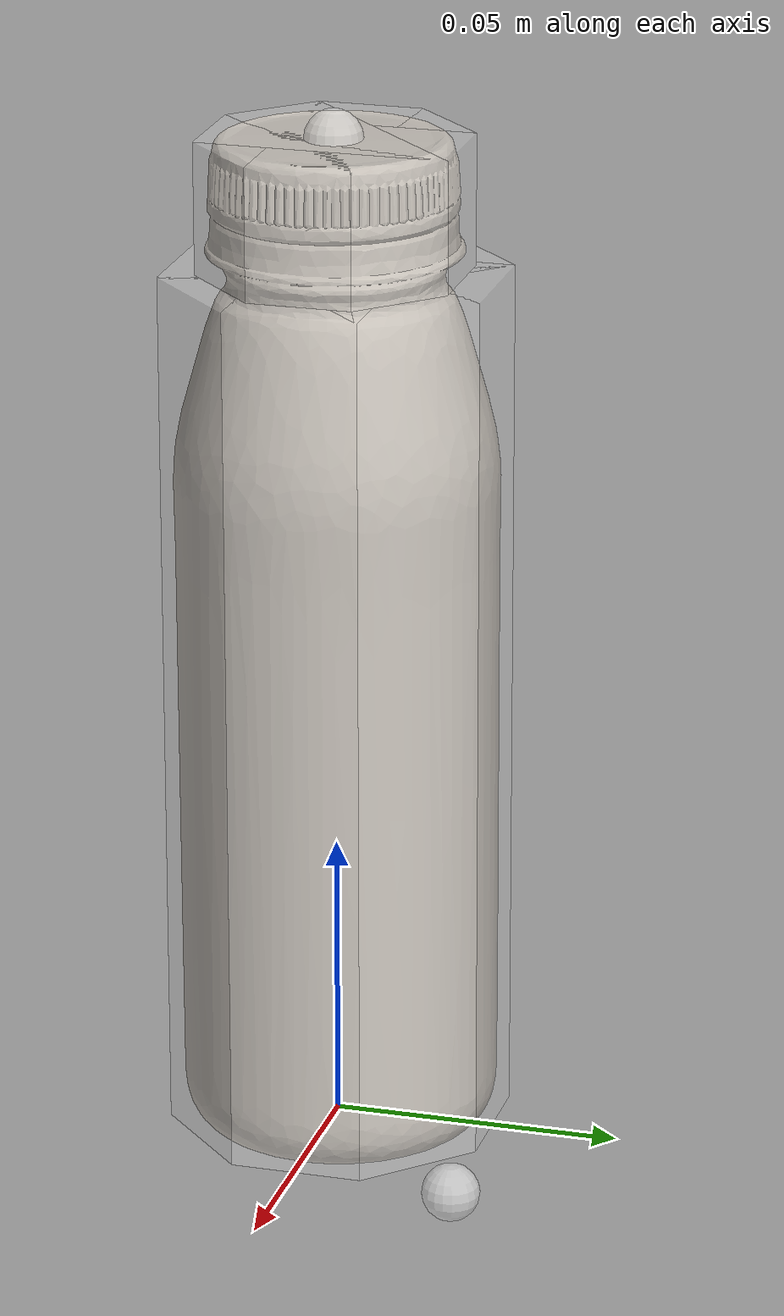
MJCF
<mujoco model="lab_bottle">
  <default>
    <default class="visual">
      <geom group="1" type="mesh" contype="0" conaffinity="0" density="100"/>
    </default>
    <default class="collision">
      <geom group="0" type="mesh" density="100" solimp="0.95 0.98 0.001" solref="0.004 1" rgba="1 1 1 0.25"/>
    </default>
  </default>
  <asset>
    <texture type="2d" name="texture_pbr_20250901" file="textures/texture_pbr_20250901.png"/>
    <material name="Material.002" texture="texture_pbr_20250901" specular="1.0" shininess="0.5"/>
    <mesh file="meshes/lab_bottle.obj" name="lab_bottle"/>
  </asset>
  <worldbody>
    <body>
      <body name="object">
        <geom material="Material.002" mesh="lab_bottle" class="visual"/>
        <geom name="collider_box118c20ce" type="box" pos="-0.0005456561797027636 6.75643328814478e-05 0.16367564499999998" size="0.021662465884246175 0.008972887163699247 0.011324354999999994" class="collision" quat="1.0 0.0 0.0 0.0"/>
        <geom name="collider_box9508fdf7" type="box" pos="-0.0005456561797027636 6.75643328814478e-05 0.16367564499999998" size="0.021662465884246175 0.008972887163699247 0.011324354999999994" class="collision" quat="0.9238795325112867 0.0 0.0 0.3826834323650898"/>
        <geom name="collider_box5b5c5a0a" type="box" pos="-0.0005456561797027636 6.75643328814478e-05 0.16367564499999998" size="0.021662465884246175 0.008972887163699247 0.011324354999999994" class="collision" quat="0.7071067811865476 0.0 0.0 0.7071067811865475"/>
        <geom name="collider_boxab4ecc4c" type="box" pos="-0.0005456561797027636 6.75643328814478e-05 0.16367564499999998" size="0.021662465884246175 0.008972887163699247 0.011324354999999994" class="collision" quat="0.38268343236508984 0.0 0.0 0.9238795325112867"/>
        <geom name="collider_box4738c86c" type="box" pos="-0.00015751032959942352 0.0003436221036645313 0.076175645" size="0.027544633549247608 0.011409360786695322 0.076160735" class="collision" quat="1.0 0.0 0.0 0.0"/>
        <geom name="collider_box5dc9d011" type="box" pos="-0.00015751032959942352 0.0003436221036645313 0.076175645" size="0.027544633549247608 0.011409360786695322 0.076160735" class="collision" quat="0.9238795325112867 0.0 0.0 0.3826834323650898"/>
        <geom name="collider_boxfa2b3fbd" type="box" pos="-0.00015751032959942352 0.0003436221036645313 0.076175645" size="0.027544633549247608 0.011409360786695322 0.076160735" class="collision" quat="0.7071067811865476 0.0 0.0 0.7071067811865475"/>
        <geom name="collider_boxd48f94ce" type="box" pos="-0.00015751032959942352 0.0003436221036645313 0.076175645" size="0.027544633549247608 0.011409360786695322 0.076160735" class="collision" quat="0.38268343236508984 0.0 0.0 0.9238795325112867"/>
      </body>
      <site name="bottom_site" pos="0 0 0.0" rgba="1 1 1 0.5" size="0.005"/>
      <site name="top_site" pos="0 0 0.175" rgba="1 1 1 0.5" size="0.005"/>
      <site name="horizontal_radius_site" pos="0.027303 0.027799 0" rgba="1 1 1 0.5" size="0.005"/>
    </body>
  </worldbody>
</mujoco>
